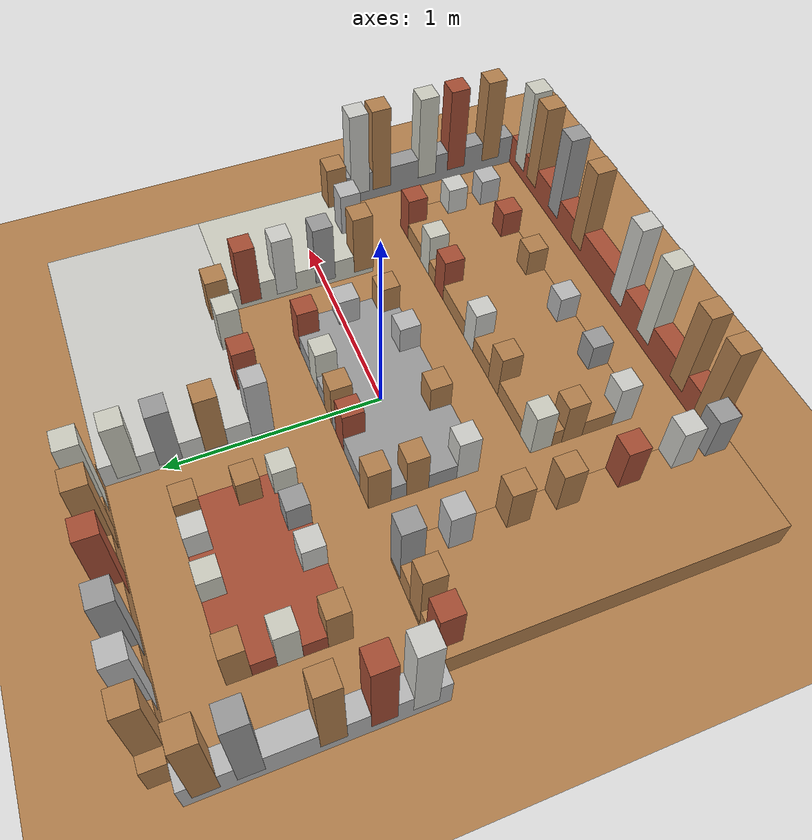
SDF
<sdf version='1.4'>
  <world name='default'>
    <!-- A global light source -->
    <include>
      <uri>model://sun</uri>
    </include>

    <physics type="ode">
      <real_time_factor>1</real_time_factor>
      <real_time_update_rate>1000</real_time_update_rate>
      <max_step_size>0.001000</max_step_size>
      <ode>
        <solver>
          <type>quick</type>
          <iters>150</iters>
          <precon_iters>0</precon_iters>
          <sor>1.400000</sor>
          <use_dynamic_moi_rescaling>1</use_dynamic_moi_rescaling>
        </solver>
        <constraints>
          <cfm>0.00001</cfm>
          <erp>0.2</erp>
          <contact_max_correcting_vel>2000.000000</contact_max_correcting_vel>
          <contact_surface_layer>0.01000</contact_surface_layer>
        </constraints>
      </ode>
    </physics>

    <!-- Load world -->

    <include>
      <uri>model://linear_test_world</uri>
    </include>

    <scene>
      <ambient>0.4 0.4 0.4 1</ambient>
      <background>0.7 0.7 0.7 1</background>
      <shadows>true</shadows>
    </scene>

    <gui fullscreen='0'>
      <camera name='user_camera'>
        <pose>0.8 0.0 12.0 0 1.5708 0</pose>
        <view_controller>orbit</view_controller>
      </camera>
    </gui>
  </world>
</sdf>

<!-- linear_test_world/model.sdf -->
<sdf version='1.4'>
    <!-- Draw Circle -->
    <model name='ros_symbol'>
      <static>1</static>

      <link name="plane">
        <collision name="collision">
          <geometry>
            <plane>
              <normal>0 0 1</normal>
              <size>5 5</size>
            </plane>
          </geometry>
          <surface>
            <friction>
              <ode>
                <mu>100</mu>
                <mu2>50</mu2>
              </ode>
            </friction>
          </surface>
        </collision>
        <visual name="visual">
          <cast_shadows>false</cast_shadows>
          <geometry>
            <plane>
              <normal>0 0 1</normal>
              <size>5 5</size>
            </plane>
          </geometry>
          <material>
            <script>
              <uri>file://media/materials/scripts/gazebo.material</uri>
              <name>Gazebo/Wood</name>
            </script>
          </material>
        </visual>
      </link>

      <link name='first_inner_islet'>
        <collision name='inner_one'>
          <pose>.25 -.75 .05 0 0 0</pose>
          <geometry>
            <box>
              <size>1.5 .5 .1</size>
            </box>
          </geometry>
        </collision>
        <visual name='inner_one'>
          <pose>.25 -.75 .05 0 0 0</pose>
          <geometry>
            <box>
              <size>1.5 .5 .1</size>
            </box>
          </geometry>
          <material>
            <script>
              <uri>file://media/materials/scripts/gazebo.material</uri>
              <name>Gazebo/Wood</name>
            </script>
          </material>
        </visual>
        <visual name='top_one_mark'>
          <pose>.95 -.55 .125 0 0 0</pose>
          <geometry>
            <box>
              <size>.101 .101 .25</size>
            </box>
          </geometry>
          <material>
            <script>
              <uri>file://media/materials/scripts/gazebo.material</uri>
              <name>Gazebo/Bricks</name>
            </script>
          </material>
        </visual>
        <visual name='top_two_mark'>
          <pose>.95 -.77 .125 0 0 0</pose>
          <geometry>
            <box>
              <size>.101 .101 .25</size>
            </box>
          </geometry>
          <material>
            <script>
              <uri>file://media/materials/scripts/gazebo.material</uri>
              <name>Gazebo/CeilingTiled</name>
            </script>
          </material>
        </visual>
        <visual name='top_three_mark'>
          <pose>.95 -.95 .125 0 0 0</pose>
          <geometry>
            <box>
              <size>.101 .101 .25</size>
            </box>
          </geometry>
          <material>
            <script>
              <uri>file://media/materials/scripts/gazebo.material</uri>
              <name>Gazebo/Pedestrian</name>
            </script>
          </material>
        </visual>
        <visual name='right_one_mark'>
            <pose>.7 -.95 .125 0 0 0</pose>
          <geometry>
            <box>
              <size>.101 .101 .25</size>
            </box>
          </geometry>
          <material>
            <script>
              <uri>file://media/materials/scripts/gazebo.material</uri>
              <name>Gazebo/Bricks</name>
            </script>
          </material>
        </visual>
        <visual name='right_two_mark'>
            <pose>.42 -.95 .125 0 0 0</pose>
          <geometry>
            <box>
              <size>.101 .101 .25</size>
            </box>
          </geometry>
          <material>
            <script>
              <uri>file://media/materials/scripts/gazebo.material</uri>
              <name>Gazebo/WoodFloor</name>
            </script>
          </material>
        </visual>
        <visual name='right_three_mark'>
            <pose>.1 -.95 .125 0 0 0</pose>
          <geometry>
            <box>
              <size>.101 .101 .25</size>
            </box>
          </geometry>
          <material>
            <script>
              <uri>file://media/materials/scripts/gazebo.material</uri>
              <name>Gazebo/Pedestrian</name>
            </script>
          </material>
        </visual>
        <visual name='right_four_mark'>
            <pose>-.2 -.95 .125 0 0 0</pose>
          <geometry>
            <box>
              <size>.101 .101 .25</size>
            </box>
          </geometry>
          <material>
            <script>
              <uri>file://media/materials/scripts/gazebo.material</uri>
              <name>Gazebo/GreyGradientSky</name>
            </script>
          </material>
        </visual>
        <visual name='bottom_one_mark'>
          <pose>-.45 -.95 .125 0 0 0</pose>
          <geometry>
            <box>
              <size>.101 .101 .25</size>
            </box>
          </geometry>
          <material>
            <script>
              <uri>file://media/materials/scripts/gazebo.material</uri>
              <name>Gazebo/CeilingTiled</name>
            </script>
          </material>
        </visual>
        <visual name='bottom_two_mark'>
          <pose>-.45 -.7 .125 0 0 0</pose>
          <geometry>
            <box>
              <size>.101 .101 .25</size>
            </box>
          </geometry>
          <material>
            <script>
              <uri>file://media/materials/scripts/gazebo.material</uri>
              <name>Gazebo/WoodFloor</name>
            </script>
          </material>
        </visual>
        <visual name='bottom_three_mark'>
          <pose>-.45 -.55 .125 0 0 0</pose>
          <geometry>
            <box>
              <size>.101 .101 .25</size>
            </box>
          </geometry>
          <material>
            <script>
              <uri>file://media/materials/scripts/gazebo.material</uri>
              <name>Gazebo/PaintedWall</name>
            </script>
          </material>
        </visual>
        <visual name='left_one_mark'>
          <pose>-.12 -.55 .125 0 0 0</pose>
          <geometry>
            <box>
              <size>.101 .101 .25</size>
            </box>
          </geometry>
          <material>
            <script>
              <uri>file://media/materials/scripts/gazebo.material</uri>
              <name>Gazebo/WoodFloor</name>
            </script>
          </material>
        </visual>
        <visual name='left_two_mark'>
          <pose>.15 -.55 .125 0 0 0</pose>
          <geometry>
            <box>
              <size>.101 .101 .25</size>
            </box>
          </geometry>
          <material>
            <script>
              <uri>file://media/materials/scripts/gazebo.material</uri>
              <name>Gazebo/CeilingTiled</name>
            </script>
          </material>
        </visual>
        <visual name='left_three_mark'>
          <pose>.5 -.55 .125 0 0 0</pose>
          <geometry>
            <box>
              <size>.101 .101 .25</size>
            </box>
          </geometry>
          <material>
            <script>
              <uri>file://media/materials/scripts/gazebo.material</uri>
              <name>Gazebo/Bricks</name>
            </script>
          </material>
        </visual>
        <visual name='left_four_mark'>
          <pose>.68 -.55 .125 0 0 0</pose>
          <geometry>
            <box>
              <size>.101 .101 .25</size>
            </box>
          </geometry>
          <material>
            <script>
              <uri>file://media/materials/scripts/gazebo.material</uri>
              <name>Gazebo/PaintedWall</name>
            </script>
          </material>
        </visual>
      </link>

      <link name='second_inner_islet'>
        <collision name='inner_one'>
          <pose>0 0 .05 0 0 0</pose>
          <geometry>
            <box>
              <size>1 .5 .1</size>
            </box>
          </geometry>
        </collision>
        <visual name='inner_one'>
          <pose>0 0 .05 0 0 0</pose>
          <geometry>
            <box>
              <size>1 .5 .1</size>
            </box>
          </geometry>
          <material>
            <script>
              <uri>file://media/materials/scripts/gazebo.material</uri>
              <name>Gazebo/GreyGradientSky</name>
            </script>
          </material>
        </visual>

        <visual name='top_one_mark'>
          <pose>.45 .2 .125 0 0 0</pose>
          <geometry>
            <box>
              <size>.101 .101 .25</size>
            </box>
          </geometry>
          <material>
            <script>
              <uri>file://media/materials/scripts/gazebo.material</uri>
              <name>Gazebo/Bricks</name>
            </script>
          </material>
        </visual>
        <visual name='top_two_mark'>
          <pose>.45 0 .125 0 0 0</pose>
          <geometry>
            <box>
              <size>.101 .101 .25</size>
            </box>
          </geometry>
          <material>
            <script>
              <uri>file://media/materials/scripts/gazebo.material</uri>
              <name>Gazebo/Pedestrian</name>
            </script>
          </material>
        </visual>
        <visual name='top_three_mark'>
          <pose>.45 -.2 .125 0 0 0</pose>
          <geometry>
            <box>
              <size>.101 .101 .25</size>
            </box>
          </geometry>
          <material>
            <script>
              <uri>file://media/materials/scripts/gazebo.material</uri>
              <name>Gazebo/Wood</name>
            </script>
          </material>
        </visual>
        <visual name='right_one_mark'>
            <pose>.2 -.2 .125 0 0 0</pose>
          <geometry>
            <box>
              <size>.101 .101 .25</size>
            </box>
          </geometry>
          <material>
            <script>
              <uri>file://media/materials/scripts/gazebo.material</uri>
              <name>Gazebo/Pedestrian</name>
            </script>
          </material>
        </visual>
        <visual name='right_two_mark'>
            <pose>-.15 -.2 .125 0 0 0</pose>
          <geometry>
            <box>
              <size>.101 .101 .25</size>
            </box>
          </geometry>
          <material>
            <script>
              <uri>file://media/materials/scripts/gazebo.material</uri>
              <name>Gazebo/WoodFloor</name>
            </script>
          </material>
        </visual>
        <visual name='bottom_one_mark'>
          <pose>-.45 -.2 .125 0 0 0</pose>
          <geometry>
            <box>
              <size>.101 .101 .25</size>
            </box>
          </geometry>
          <material>
            <script>
              <uri>file://media/materials/scripts/gazebo.material</uri>
              <name>Gazebo/CeilingTiled</name>
            </script>
          </material>
        </visual>
        <visual name='bottom_two_mark'>
          <pose>-.45 0.03 .125 0 0 0</pose>
          <geometry>
            <box>
              <size>.101 .101 .25</size>
            </box>
          </geometry>
          <material>
            <script>
              <uri>file://media/materials/scripts/gazebo.material</uri>
              <name>Gazebo/WoodPallet</name>
            </script>
          </material>
        </visual>
        <visual name='bottom_three_mark'>
          <pose>-.45 .2 .125 0 0 0</pose>
          <geometry>
            <box>
              <size>.101 .101 .25</size>
            </box>
          </geometry>
          <material>
            <script>
              <uri>file://media/materials/scripts/gazebo.material</uri>
              <name>Gazebo/WoodFloor</name>
            </script>
          </material>
        </visual>
        <visual name='left_one_mark'>
          <pose>-.15 .2 .125 0 0 0</pose>
          <geometry>
            <box>
              <size>.101 .101 .25</size>
            </box>
          </geometry>
          <material>
            <script>
              <uri>file://media/materials/scripts/gazebo.material</uri>
              <name>Gazebo/Bricks</name>
            </script>
          </material>
        </visual>
        <visual name='left_two_mark'>
          <pose>0 .2 .125 0 0 0</pose>
          <geometry>
            <box>
              <size>.101 .101 .25</size>
            </box>
          </geometry>
          <material>
            <script>
              <uri>file://media/materials/scripts/gazebo.material</uri>
              <name>Gazebo/WoodPallet</name>
            </script>
          </material>
        </visual>
        <visual name='left_three_mark'>
          <pose>.2 .2 .125 0 0 0</pose>
          <geometry>
            <box>
              <size>.101 .101 .25</size>
            </box>
          </geometry>
          <material>
            <script>
              <uri>file://media/materials/scripts/gazebo.material</uri>
              <name>Gazebo/PaintedWall</name>
            </script>
          </material>
        </visual>

      </link>

      <link name='third_inner_islet'>
        <collision name='inner_one'>
          <pose>-.625 .75 .05 0 0 0</pose>
          <geometry>
            <box>
              <size>.75 .5 .1</size>
            </box>
          </geometry>
        </collision>
        <visual name='inner_one'>
          <pose>-.625 .75 .05 0 0 0</pose>
          <geometry>
            <box>
              <size>.75 .5 .1</size>
            </box>
          </geometry>
          <material>
            <script>
              <uri>file://media/materials/scripts/gazebo.material</uri>
              <name>Gazebo/Bricks</name>
            </script>
          </material>
        </visual>

        <visual name='top_one_mark'>
          <pose>-.3 .95 .125 0 0 0</pose>
          <geometry>
            <box>
              <size>.101 .101 .25</size>
            </box>
          </geometry>
          <material>
            <script>
              <uri>file://media/materials/scripts/gazebo.material</uri>
              <name>Gazebo/WoodFloor</name>
            </script>
          </material>
        </visual>
        <visual name='top_two_mark'>
          <pose>-.3 .7  .125 0 0 0</pose>
          <geometry>
            <box>
              <size>.101 .101 .25</size>
            </box>
          </geometry>
          <material>
            <script>
              <uri>file://media/materials/scripts/gazebo.material</uri>
              <name>Gazebo/WoodPallet</name>
            </script>
          </material>
        </visual>
        <visual name='top_three_mark'>
          <pose>-.3 .55  .125 0 0 0</pose>
          <geometry>
            <box>
              <size>.101 .101 .25</size>
            </box>
          </geometry>
          <material>
            <script>
              <uri>file://media/materials/scripts/gazebo.material</uri>
              <name>Gazebo/PaintedWall</name>
            </script>
          </material>
        </visual>
        <visual name='right_one_mark'>
            <pose>-.48 .55 .125 0 0 0</pose>
          <geometry>
            <box>
              <size>.101 .101 .25</size>
            </box>
          </geometry>
          <material>
            <script>
              <uri>file://media/materials/scripts/gazebo.material</uri>
              <name>Gazebo/GreyGradientSky</name>
            </script>
          </material>
        </visual>
        <visual name='right_two_mark'>
            <pose>-.67 .55 .125 0 0 0</pose>
          <geometry>
            <box>
              <size>.101 .101 .25</size>
            </box>
          </geometry>
          <material>
            <script>
              <uri>file://media/materials/scripts/gazebo.material</uri>
              <name>Gazebo/CeilingTiled</name>
            </script>
          </material>
        </visual>
        <visual name='bottom_one_mark'>
          <pose>-.95 .55 .125 0 0 0</pose>
          <geometry>
            <box>
              <size>.101 .101 .25</size>
            </box>
          </geometry>
          <material>
            <script>
              <uri>file://media/materials/scripts/gazebo.material</uri>
              <name>Gazebo/WoodPallet</name>
            </script>
          </material>
        </visual>
        <visual name='bottom_two_mark'>
          <pose>-.95 .75 .125 0 0 0</pose>
          <geometry>
            <box>
              <size>.101 .101 .25</size>
            </box>
          </geometry>
          <material>
            <script>
              <uri>file://media/materials/scripts/gazebo.material</uri>
              <name>Gazebo/PaintedWall</name>
            </script>
          </material>
        </visual>
        <visual name='bottom_three_mark'>
          <pose>-.95 .95 .125 0 0 0</pose>
          <geometry>
            <box>
              <size>.101 .101 .25</size>
            </box>
          </geometry>
          <material>
            <script>
              <uri>file://media/materials/scripts/gazebo.material</uri>
              <name>Gazebo/Wood</name>
            </script>
          </material>
        </visual>
        <visual name='left_one_mark'>
          <pose>-.65 .95 .125 0 0 0</pose>
          <geometry>
            <box>
              <size>.101 .101 .25</size>
            </box>
          </geometry>
          <material>
            <script>
              <uri>file://media/materials/scripts/gazebo.material</uri>
              <name>Gazebo/PaintedWall</name>
            </script>
          </material>
        </visual>
        <visual name='left_two_mark'>
          <pose>-.45 .95 .125 0 0 0</pose>
          <geometry>
            <box>
              <size>.101 .101 .25</size>
            </box>
          </geometry>
          <material>
            <script>
              <uri>file://media/materials/scripts/gazebo.material</uri>
              <name>Gazebo/CeilingTiled</name>
            </script>
          </material>
        </visual>

      </link>

      <link name='first_outer_islet'>
        <collision name='inner_one'>
          <pose> -1 -.5 .07 0 0 0</pose>
          <geometry>
            <box>
              <size>.5 1.5 .14</size>
            </box>
          </geometry>
        </collision>
        <visual name='inner_one'>
          <pose> -1 -.5 .07 0 0 0</pose>
          <geometry>
            <box>
              <size>.5 1.5 .14</size>
            </box>
          </geometry>
          <material>
            <script>
              <uri>file://media/materials/scripts/gazebo.material</uri>
              <name>Gazebo/WoodFloor</name>
            </script>
          </material>
        </visual>

        <visual name='top_one_mark'>
          <pose>-.8 .2 .205 0 0 0</pose>
          <geometry>
            <box>
              <size>.101 .101 .35</size>
            </box>
          </geometry>
          <material>
            <script>
              <uri>file://media/materials/scripts/gazebo.material</uri>
              <name>Gazebo/GreyGradientSky</name>
            </script>
          </material>
        </visual>
        <visual name='top_two_mark'>
          <pose>-.8 0 .185 0 0 0</pose>
          <geometry>
            <box>
              <size>.101 .101 .35</size>
            </box>
          </geometry>
          <material>
            <script>
              <uri>file://media/materials/scripts/gazebo.material</uri>
              <name>Gazebo/Pedestrian</name>
            </script>
          </material>
        </visual>
        <visual name='top_three_mark'>
          <pose>-.8 -.25 .205 0 0 0</pose>
          <geometry>
            <box>
              <size>.101 .101 .35</size>
            </box>
          </geometry>
          <material>
            <script>
              <uri>file://media/materials/scripts/gazebo.material</uri>
              <name>Gazebo/Wood</name>
            </script>
          </material>
        </visual>
        <visual name='top_four_mark'>
          <pose>-.8 -.47 .205 0 0 0</pose>
          <geometry>
            <box>
              <size>.101 .101 .35</size>
            </box>
          </geometry>
          <material>
            <script>
              <uri>file://media/materials/scripts/gazebo.material</uri>
              <name>Gazebo/WoodPallet</name>
            </script>
          </material>
        </visual>
        <visual name='top_five_mark'>
          <pose>-.8 -.75 .205 0 0 0</pose>
          <geometry>
            <box>
              <size>.101 .101 .35</size>
            </box>
          </geometry>
          <material>
            <script>
              <uri>file://media/materials/scripts/gazebo.material</uri>
              <name>Gazebo/Bricks</name>
            </script>
          </material>
        </visual>
        <visual name='top_six_mark'>
          <pose>-.8 -1 .205 0 0 0</pose>
          <geometry>
            <box>
              <size>.101 .101 .35</size>
            </box>
          </geometry>
          <material>
            <script>
              <uri>file://media/materials/scripts/gazebo.material</uri>
              <name>Gazebo/CeilingTiled</name>
            </script>
          </material>
        </visual>
        <visual name='top_seven_mark'>
          <pose>-.8 -1.16 .205 0 0 0</pose>
          <geometry>
            <box>
              <size>.101 .101 .35</size>
            </box>
          </geometry>
          <material>
            <script>
              <uri>file://media/materials/scripts/gazebo.material</uri>
              <name>Gazebo/GreyGradientSky</name>
            </script>
          </material>
        </visual>
        <visual name='left_one_mark'>
          <pose>-1.155 .2 .205 0 0 0</pose>
          <geometry>
            <box>
              <size>.101 .101 .35</size>
            </box>
          </geometry>
          <material>
            <script>
              <uri>file://media/materials/scripts/gazebo.material</uri>
              <name>Gazebo/Bricks</name>
            </script>
          </material>
        </visual>
        <visual name='left_two_mark'>
          <pose>-1 .2 .205 0 0 0</pose>
          <geometry>
            <box>
              <size>.101 .101 .35</size>
            </box>
          </geometry>
          <material>
            <script>
              <uri>file://media/materials/scripts/gazebo.material</uri>
              <name>Gazebo/Wood</name>
            </script>
          </material>
        </visual>

      </link>

      <link name='second_outer_islet'>
        <collision name='inner_one'>
          <pose>.625 .875 .07 0 0 0</pose>
          <geometry>
            <box>
              <size>1.25 .75 .14</size>
            </box>
          </geometry>
        </collision>
        <visual name='inner_one'>
          <pose>.625 .875 .07 0 0 0</pose>
          <geometry>
            <box>
              <size>1.25 .75 .14</size>
            </box>
          </geometry>
          <material>
            <script>
              <uri>file://media/materials/scripts/gazebo.material</uri>
              <name>Gazebo/CeilingTiled</name>
            </script>
          </material>
        </visual>

        <visual name='right_one_mark'>
          <pose>.66 .55 .205 0 0 0</pose>
          <geometry>
            <box>
              <size>.101 .101 .35</size>
            </box>
          </geometry>
          <material>
            <script>
              <uri>file://media/materials/scripts/gazebo.material</uri>
              <name>Gazebo/WoodFloor</name>
            </script>
          </material>
        </visual>
        <visual name='right_two_mark'>
          <pose>.47 .55 .205 0 0 0</pose>
          <geometry>
            <box>
              <size>.101 .101 .35</size>
            </box>
          </geometry>
          <material>
            <script>
              <uri>file://media/materials/scripts/gazebo.material</uri>
              <name>Gazebo/PaintedWall</name>
            </script>
          </material>
        </visual>
        <visual name='right_three_mark'>
          <pose>.23 .55 .205 0 0 0</pose>
          <geometry>
            <box>
              <size>.101 .101 .35</size>
            </box>
          </geometry>
          <material>
            <script>
              <uri>file://media/materials/scripts/gazebo.material</uri>
              <name>Gazebo/Bricks</name>
            </script>
          </material>
        </visual>
        <visual name='bottom_one_mark'>
          <pose>.05 .55 .205 0 0 0</pose>
          <geometry>
            <box>
              <size>.101 .101 .35</size>
            </box>
          </geometry>
          <material>
            <script>
              <uri>file://media/materials/scripts/gazebo.material</uri>
              <name>Gazebo/Pedestrian</name>
            </script>
          </material>
        </visual>
        <visual name='bottom_two_mark'>
          <pose>.05 .76 .205 0 0 0</pose>
          <geometry>
            <box>
              <size>.101 .101 .35</size>
            </box>
          </geometry>
          <material>
            <script>
              <uri>file://media/materials/scripts/gazebo.material</uri>
              <name>Gazebo/Wood</name>
            </script>
          </material>
        </visual>
        <visual name='bottom_three_mark'>
          <pose>.05 0.96 .205 0 0 0</pose>
          <geometry>
            <box>
              <size>.101 .101 .35</size>
            </box>
          </geometry>
          <material>
            <script>
              <uri>file://media/materials/scripts/gazebo.material</uri>
              <name>Gazebo/GreyGradientSky</name>
            </script>
          </material>
        </visual>
        <visual name='bottom_four_mark'>
          <pose>.05 1.14 .205 0 0 0</pose>
          <geometry>
            <box>
              <size>.101 .101 .35</size>
            </box>
          </geometry>
          <material>
            <script>
              <uri>file://media/materials/scripts/gazebo.material</uri>
              <name>Gazebo/PaintedWall</name>
            </script>
          </material>
        </visual>

      </link>

      <link name='third_outer_islet'>
        <collision name='inner_one'>
          <pose>1 .125 .07 0 0 0</pose>
          <geometry>
            <box>
              <size>.5 .75 .14</size>
            </box>
          </geometry>
        </collision>
        <visual name='inner_one'>
          <pose>1 .125 .07 0 0 0</pose>
          <geometry>
            <box>
              <size>.5 .75 .14</size>
            </box>
          </geometry>
          <material>
            <script>
              <uri>file://media/materials/scripts/gazebo.material</uri>
              <name>Gazebo/PaintedWall</name>
            </script>
          </material>
        </visual>

        <visual name='right_one_mark'>
          <pose>1.17 -.2 .205 0 0 0</pose>
          <geometry>
            <box>
              <size>.101 .101 .35</size>
            </box>
          </geometry>
          <material>
            <script>
              <uri>file://media/materials/scripts/gazebo.material</uri>
              <name>Gazebo/WoodPallet</name>
            </script>
          </material>
        </visual>
        <visual name='right_two_mark'>
          <pose>.97 -.2 .205 0 0 0</pose>
          <geometry>
            <box>
              <size>.101 .101 .35</size>
            </box>
          </geometry>
          <material>
            <script>
              <uri>file://media/materials/scripts/gazebo.material</uri>
              <name>Gazebo/Pedestrian</name>
            </script>
          </material>
        </visual>
        <visual name='bottom_one_mark'>
          <pose>.8 -.2 .205 0 0 0</pose>
          <geometry>
            <box>
              <size>.101 .101 .35</size>
            </box>
          </geometry>
          <material>
            <script>
              <uri>file://media/materials/scripts/gazebo.material</uri>
              <name>Gazebo/WoodFloor</name>
            </script>
          </material>
        </visual>
        <visual name='bottom_two_mark'>
          <pose>.8 0 .205 0 0 0</pose>
          <geometry>
            <box>
              <size>.101 .101 .35</size>
            </box>
          </geometry>
          <material>
            <script>
              <uri>file://media/materials/scripts/gazebo.material</uri>
              <name>Gazebo/GreyGradientSky</name>
            </script>
          </material>
        </visual>
        <visual name='bottom_three_mark'>
          <pose>.8 .2 .205 0 0 0</pose>
          <geometry>
            <box>
              <size>.101 .101 .35</size>
            </box>
          </geometry>
          <material>
            <script>
              <uri>file://media/materials/scripts/gazebo.material</uri>
              <name>Gazebo/CeilingTiled</name>
            </script>
          </material>
        </visual>
        <visual name='bottom_four_mark'>
          <pose>.8 .38 .205 0 0 0</pose>
          <geometry>
            <box>
              <size>.101 .101 .35</size>
            </box>
          </geometry>
          <material>
            <script>
              <uri>file://media/materials/scripts/gazebo.material</uri>
              <name>Gazebo/Bricks</name>
            </script>
          </material>
        </visual>

      </link>

      <link name='outer_limits'>
        <collision name='outer_one'>
          <pose>1.3 -.75 .09 0 0 0</pose>
          <geometry>
            <box>
              <size>.1 1 .18</size>
            </box>
          </geometry>
        </collision>
        <visual name='outer_one'>
          <pose>1.3 -.75 .09 0 0 0</pose>
          <geometry>
            <box>
              <size>.1 1 .18</size>
            </box>
          </geometry>
          <material>
            <script>
              <uri>file://media/materials/scripts/gazebo.material</uri>
              <name>Gazebo/GreyGradientSky</name>
            </script>
          </material>
        </visual>

        <collision name='outer_two'>
          <pose> 0.25 -1.3 .09 0 0 0</pose>
          <geometry>
            <box>
              <size>2 .1 .18</size>
            </box>
          </geometry>
        </collision>
        <visual name='outer_two'>
          <pose> 0.25 -1.3 .09 0 0 0</pose>
          <geometry>
            <box>
              <size>2 .1 .18</size>
            </box>
          </geometry>
          <material>
            <script>
              <uri>file://media/materials/scripts/gazebo.material</uri>
              <name>Gazebo/Bricks</name>
            </script>
          </material>
        </visual>

        <collision name='outer_tree'>
          <pose>-1.3 .75 .09 0 0 0</pose>
          <geometry>
            <box>
              <size>.1 1 .18</size>
            </box>
          </geometry>
        </collision>
        <visual name='outer_tree'>
          <pose>-1.3 .75 .09 0 0 0</pose>
          <geometry>
            <box>
              <size>.1 1 .18</size>
            </box>
          </geometry>
          <material>
            <script>
              <uri>file://media/materials/scripts/gazebo.material</uri>
              <name>Gazebo/Pedestrian</name>
            </script>
          </material>
        </visual>

        <collision name='outer_four'>
          <pose> -.625 1.3 .09 0 0 0</pose>
          <geometry>
            <box>
              <size>1.25 .1 .18</size>
            </box>
          </geometry>
        </collision>
        <visual name='outer_four'>
          <pose> -.625 1.3 .09 0 0 0</pose>
          <geometry>
            <box>
              <size>1.25 .1 .18</size>
            </box>
          </geometry>
          <material>
            <script>
              <uri>file://media/materials/scripts/gazebo.material</uri>
              <name>Gazebo/WoodPallet</name>
            </script>
          </material>
        </visual>
        <visual name='top_one_mark'>
          <pose>1.3 -.37 .31 0 0 0</pose>
          <geometry>
            <box>
              <size>.101 .101 .5</size>
            </box>
          </geometry>
          <material>
            <script>
              <uri>file://media/materials/scripts/gazebo.material</uri>
              <name>Gazebo/CeilingTiled</name>
            </script>
          </material>
        </visual>
        <visual name='top_two_mark'>
          <pose>1.3 -.49 .31 0 0 0</pose>
          <geometry>
            <box>
              <size>.101 .101 .5</size>
            </box>
          </geometry>
          <material>
            <script>
              <uri>file://media/materials/scripts/gazebo.material</uri>
              <name>Gazebo/Wood</name>
            </script>
          </material>
        </visual>
        <visual name='top_three_mark'>
          <pose>1.3 -.75 .31 0 0 0</pose>
          <geometry>
            <box>
              <size>.101 .101 .5</size>
            </box>
          </geometry>
          <material>
            <script>
              <uri>file://media/materials/scripts/gazebo.material</uri>
              <name>Gazebo/PaintedWall</name>
            </script>
          </material>
        </visual>
        <visual name='top_four_mark'>
          <pose>1.3 -.92 .31 0 0 0</pose>
          <geometry>
            <box>
              <size>.101 .101 .5</size>
            </box>
          </geometry>
          <material>
            <script>
              <uri>file://media/materials/scripts/gazebo.material</uri>
              <name>Gazebo/Bricks</name>
            </script>
          </material>
        </visual>
        <visual name='top_five_mark'>
          <pose>1.3 -1.125 .31 0 0 0</pose>
          <geometry>
            <box>
              <size>.101 .101 .5</size>
            </box>
          </geometry>
          <material>
            <script>
              <uri>file://media/materials/scripts/gazebo.material</uri>
              <name>Gazebo/WoodPallet</name>
            </script>
          </material>
        </visual>
        <visual name='right_one_mark'>
          <pose>1.14 -1.3 .31 0 0 0</pose>
          <geometry>
            <box>
              <size>.101 .101 .5</size>
            </box>
          </geometry>
          <material>
            <script>
              <uri>file://media/materials/scripts/gazebo.material</uri>
              <name>Gazebo/PaintedWall</name>
            </script>
          </material>
        </visual>
        <visual name='right_two_mark'>
          <pose>1 -1.3 .31 0 0 0</pose>
          <geometry>
            <box>
              <size>.101 .101 .5</size>
            </box>
          </geometry>
          <material>
            <script>
              <uri>file://media/materials/scripts/gazebo.material</uri>
              <name>Gazebo/Wood</name>
            </script>
          </material>
        </visual>
        <visual name='right_three_mark'>
          <pose>.75 -1.3 .31 0 0 0</pose>
          <geometry>
            <box>
              <size>.101 .101 .5</size>
            </box>
          </geometry>
          <material>
            <script>
              <uri>file://media/materials/scripts/gazebo.material</uri>
              <name>Gazebo/GreyGradientSky</name>
            </script>
          </material>
        </visual>
        <visual name='right_four_mark'>
          <pose>.5 -1.3 .31 0 0 0</pose>
          <geometry>
            <box>
              <size>.101 .101 .5</size>
            </box>
          </geometry>
          <material>
            <script>
              <uri>file://media/materials/scripts/gazebo.material</uri>
              <name>Gazebo/WoodFloor</name>
            </script>
          </material>
        </visual>
        <visual name='right_five_mark'>
          <pose>0.1 -1.3 .31 0 0 0</pose>
          <geometry>
            <box>
              <size>.101 .101 .5</size>
            </box>
          </geometry>
          <material>
            <script>
              <uri>file://media/materials/scripts/gazebo.material</uri>
              <name>Gazebo/CeilingTiled</name>
            </script>
          </material>
        </visual>
        <visual name='right_six_mark'>
          <pose>-.15 -1.3 .31 0 0 0</pose>
          <geometry>
            <box>
              <size>.101 .101 .5</size>
            </box>
          </geometry>
          <material>
            <script>
              <uri>file://media/materials/scripts/gazebo.material</uri>
              <name>Gazebo/PaintedWall</name>
            </script>
          </material>
        </visual>
        <visual name='right_seven_mark'>
          <pose>-0.44 -1.3 .31 0 0 0</pose>
          <geometry>
            <box>
              <size>.101 .101 .5</size>
            </box>
          </geometry>
          <material>
            <script>
              <uri>file://media/materials/scripts/gazebo.material</uri>
              <name>Gazebo/WoodPallet</name>
            </script>
          </material>
        </visual>
        <visual name='right_eight_mark'>
          <pose>-0.64 -1.3 .31 0 0 0</pose>
          <geometry>
            <box>
              <size>.101 .101 .5</size>
            </box>
          </geometry>
          <material>
            <script>
              <uri>file://media/materials/scripts/gazebo.material</uri>
              <name>Gazebo/WoodFloor</name>
            </script>
          </material>
        </visual>
        <visual name='bottom_one_mark'>
          <pose>-1.3 0.35 .31 0 0 0</pose>
          <geometry>
            <box>
              <size>.101 .101 .5</size>
            </box>
          </geometry>
          <material>
            <script>
              <uri>file://media/materials/scripts/gazebo.material</uri>
              <name>Gazebo/CeilingTiled</name>
            </script>
          </material>
        </visual>
        <visual name='bottom_two_mark'>
          <pose>-1.3 0.51 .31 0 0 0</pose>
          <geometry>
            <box>
              <size>.101 .101 .5</size>
            </box>
          </geometry>
          <material>
            <script>
              <uri>file://media/materials/scripts/gazebo.material</uri>
              <name>Gazebo/Bricks</name>
            </script>
          </material>
        </visual>
        <visual name='bottom_three_mark'>
          <pose>-1.3 0.7 .31 0 0 0</pose>
          <geometry>
            <box>
              <size>.101 .101 .5</size>
            </box>
          </geometry>
          <material>
            <script>
              <uri>file://media/materials/scripts/gazebo.material</uri>
              <name>Gazebo/WoodPallet</name>
            </script>
          </material>
        </visual>
        <visual name='bottom_four_mark'>
          <pose>-1.3 1 .31 0 0 0</pose>
          <geometry>
            <box>
              <size>.101 .101 .5</size>
            </box>
          </geometry>
          <material>
            <script>
              <uri>file://media/materials/scripts/gazebo.material</uri>
              <name>Gazebo/GreyGradientSky</name>
            </script>
          </material>
        </visual>
        <visual name='bottom_five_mark'>
          <pose>-1.3 1.16 .31 0 0 0</pose>
          <geometry>
            <box>
              <size>.101 .101 .5</size>
            </box>
          </geometry>
          <material>
            <script>
              <uri>file://media/materials/scripts/gazebo.material</uri>
              <name>Gazebo/WoodFloor</name>
            </script>
          </material>
        </visual>
        <visual name='left_one_mark'>
          <pose>-1.136 1.3 .31 0 0 0</pose>
          <geometry>
            <box>
              <size>.101 .101 .5</size>
            </box>
          </geometry>
          <material>
            <script>
              <uri>file://media/materials/scripts/gazebo.material</uri>
              <name>Gazebo/Wood</name>
            </script>
          </material>
        </visual>
        <visual name='left_two_mark'>
          <pose>-.97 1.3 .31 0 0 0</pose>
          <geometry>
            <box>
              <size>.101 .101 .5</size>
            </box>
          </geometry>
          <material>
            <script>
              <uri>file://media/materials/scripts/gazebo.material</uri>
              <name>Gazebo/Pedestrian</name>
            </script>
          </material>
        </visual>
        <visual name='left_three_mark'>
          <pose>-.76 1.3 .31 0 0 0</pose>
          <geometry>
            <box>
              <size>.101 .101 .5</size>
            </box>
          </geometry>
          <material>
            <script>
              <uri>file://media/materials/scripts/gazebo.material</uri>
              <name>Gazebo/GreyGradientSky</name>
            </script>
          </material>
        </visual>
        <visual name='left_four_mark'>
          <pose>-.5 1.3 .31 0 0 0</pose>
          <geometry>
            <box>
              <size>.101 .101 .5</size>
            </box>
          </geometry>
          <material>
            <script>
              <uri>file://media/materials/scripts/gazebo.material</uri>
              <name>Gazebo/Bricks</name>
            </script>
          </material>
        </visual>
        <visual name='left_five_mark'>
          <pose>-0.29 1.3 .31 0 0 0</pose>
          <geometry>
            <box>
              <size>.101 .101 .5</size>
            </box>
          </geometry>
          <material>
            <script>
              <uri>file://media/materials/scripts/gazebo.material</uri>
              <name>Gazebo/WoodFloor</name>
            </script>
          </material>
        </visual>
        <visual name='left_six_mark'>
          <pose>-0.11 1.3 .31 0 0 0</pose>
          <geometry>
            <box>
              <size>.101 .101 .5</size>
            </box>
          </geometry>
          <material>
            <script>
              <uri>file://media/materials/scripts/gazebo.material</uri>
              <name>Gazebo/PaintedWall</name>
            </script>
          </material>
        </visual>

      </link>

    </model>
</sdf>
